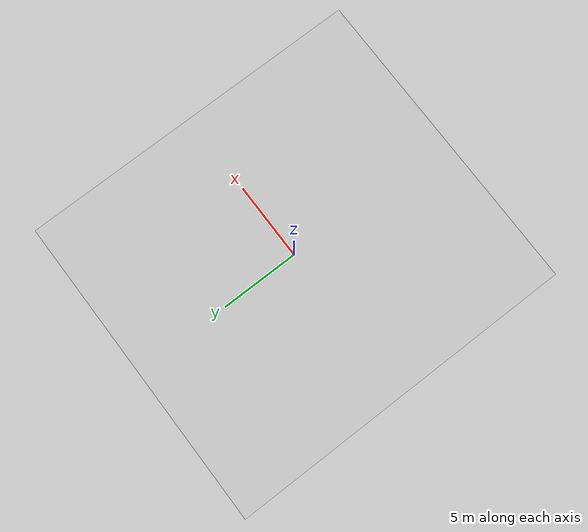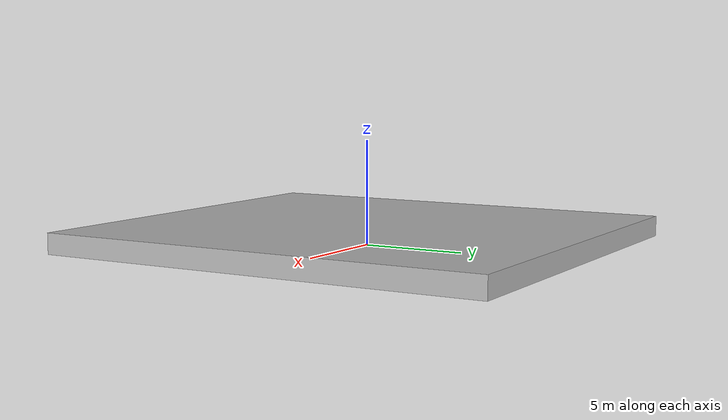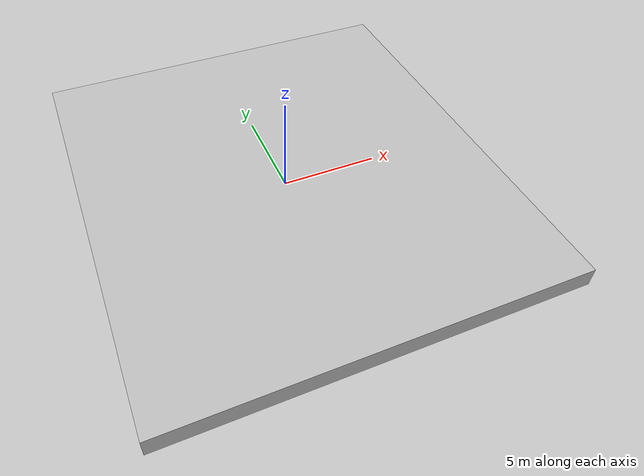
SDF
<?xml version="1.0" ?>
<sdf version="1.4">
    <model name="platform_1">
        <pose>0 0 .5 0 0 0</pose>
        <static>true</static>
        <link name="link">
            <collision name="collision">
                <geometry>
                    <box>
                        <size>20 22 1</size>
                    </box>
                </geometry>
            </collision>
            <visual name="visual">
                <geometry>
                    <mesh>
                        <uri>model://simple_box_stage/meshes/platform_1.dae</uri>
                    </mesh>
                </geometry>
            </visual>
        </link>
    </model>
</sdf>
